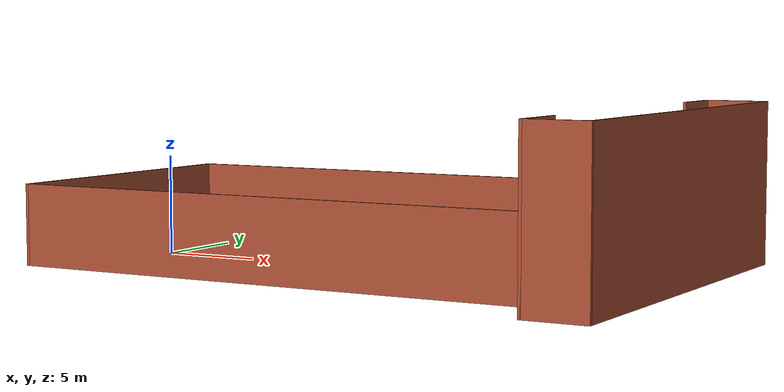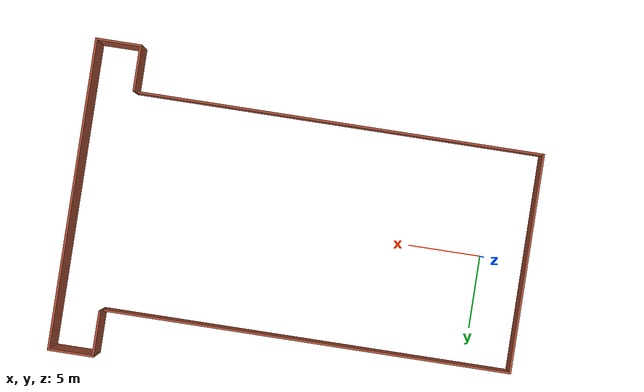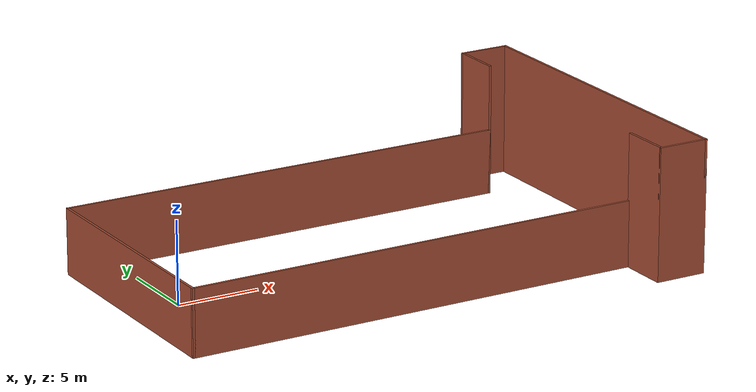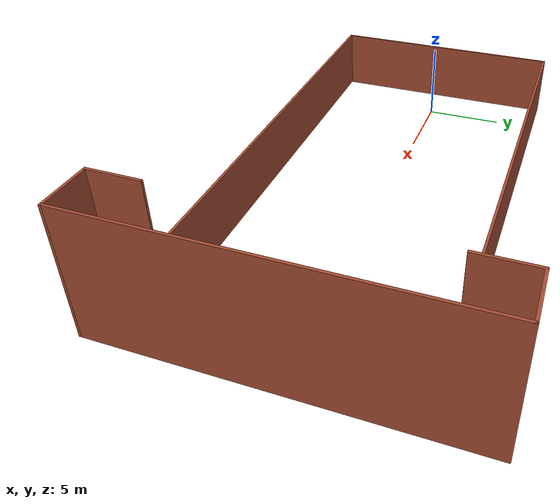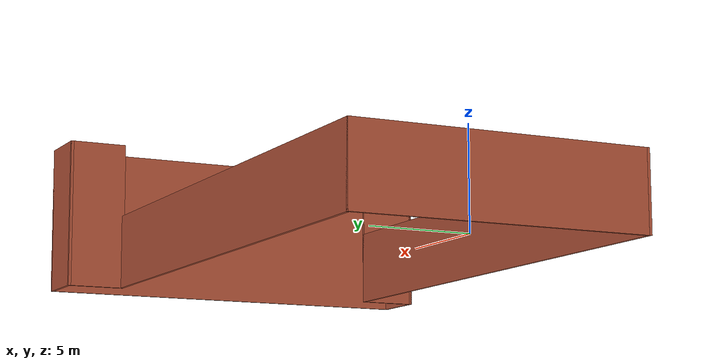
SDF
<?xml version='1.0'?>
<sdf version='1.7'>
  <model name='floorplan3'>
    <pose>12.5 0 0 0 -0 0</pose>
    <link name='Wall_0'>
      <collision name='Wall_0_Collision'>
        <geometry>
          <box>
            <size>15.15 0.15 4</size>
          </box>
        </geometry>
        <pose>0 0 2 0 -0 0</pose>
      </collision>
      <visual name='Wall_0_Visual'>
        <pose>0 0 2 0 -0 0</pose>
        <geometry>
          <box>
            <size>15.15 0.15 4</size>
          </box>
        </geometry>
        <material>
          <script>
            <uri>file://media/materials/scripts/gazebo.material</uri>
            <name>Gazebo/Bricks</name>
          </script>
          <ambient>1 1 1 1</ambient>
        </material>
        <meta>
          <layer>0</layer>
        </meta>
      </visual>
      <pose>-15.5 0 0 0 -0 1.5708</pose>
    </link>
    <link name='Wall_10'>
      <collision name='Wall_10_Collision'>
        <geometry>
          <box>
            <size>3.15 0.15 8</size>
          </box>
        </geometry>
        <pose>0 0 4 0 -0 0</pose>
      </collision>
      <visual name='Wall_10_Visual'>
        <pose>0 0 4 0 -0 0</pose>
        <geometry>
          <box>
            <size>3.15 0.15 8</size>
          </box>
        </geometry>
        <material>
          <script>
            <uri>file://media/materials/scripts/gazebo.material</uri>
            <name>Gazebo/Bricks</name>
          </script>
          <ambient>1 1 1 1</ambient>
        </material>
        <meta>
          <layer>0</layer>
        </meta>
      </visual>
      <pose>14 10.5 0 0 -0 0</pose>
    </link>
    <link name='Wall_11'>
      <collision name='Wall_11_Collision'>
        <geometry>
          <box>
            <size>21.15 0.15 8</size>
          </box>
        </geometry>
        <pose>0 0 4 0 -0 0</pose>
      </collision>
      <visual name='Wall_11_Visual'>
        <pose>0 0 4 0 -0 0</pose>
        <geometry>
          <box>
            <size>21.15 0.15 8</size>
          </box>
        </geometry>
        <material>
          <script>
            <uri>file://media/materials/scripts/gazebo.material</uri>
            <name>Gazebo/Bricks</name>
          </script>
          <ambient>1 1 1 1</ambient>
        </material>
        <meta>
          <layer>0</layer>
        </meta>
      </visual>
      <pose>15.5 0 0 0 -0 -1.5708</pose>
    </link>
    <link name='Wall_12'>
      <collision name='Wall_12_Collision'>
        <geometry>
          <box>
            <size>3.15 0.15 8</size>
          </box>
        </geometry>
        <pose>0 0 4 0 -0 0</pose>
      </collision>
      <visual name='Wall_12_Visual'>
        <pose>0 0 4 0 -0 0</pose>
        <geometry>
          <box>
            <size>3.15 0.15 8</size>
          </box>
        </geometry>
        <material>
          <script>
            <uri>file://media/materials/scripts/gazebo.material</uri>
            <name>Gazebo/Bricks</name>
          </script>
          <ambient>1 1 1 1</ambient>
        </material>
        <meta>
          <layer>0</layer>
        </meta>
      </visual>
      <pose>14 -10.5 0 0 -0 3.14159</pose>
    </link>
    <link name='Wall_2'>
      <collision name='Wall_2_Collision'>
        <geometry>
          <box>
            <size>28.15 0.15 4</size>
          </box>
        </geometry>
        <pose>0 0 2 0 -0 0</pose>
      </collision>
      <visual name='Wall_2_Visual'>
        <pose>0 0 2 0 -0 0</pose>
        <geometry>
          <box>
            <size>28.15 0.15 4</size>
          </box>
        </geometry>
        <material>
          <script>
            <uri>file://media/materials/scripts/gazebo.material</uri>
            <name>Gazebo/Bricks</name>
          </script>
          <ambient>1 1 1 1</ambient>
        </material>
        <meta>
          <layer>0</layer>
        </meta>
      </visual>
      <pose>-1.5 -7.5 0 0 -0 0</pose>
    </link>
    <link name='Wall_4'>
      <collision name='Wall_4_Collision'>
        <geometry>
          <box>
            <size>28.15 0.15 4</size>
          </box>
        </geometry>
        <pose>0 0 2 0 -0 0</pose>
      </collision>
      <visual name='Wall_4_Visual'>
        <pose>0 0 2 0 -0 0</pose>
        <geometry>
          <box>
            <size>28.15 0.15 4</size>
          </box>
        </geometry>
        <material>
          <script>
            <uri>file://media/materials/scripts/gazebo.material</uri>
            <name>Gazebo/Bricks</name>
          </script>
          <ambient>1 1 1 1</ambient>
        </material>
        <meta>
          <layer>0</layer>
        </meta>
      </visual>
      <pose>-1.5 7.5 0 0 -0 0</pose>
    </link>
    <link name='Wall_6'>
      <collision name='Wall_6_Collision'>
        <geometry>
          <box>
            <size>3.15 0.15 8</size>
          </box>
        </geometry>
        <pose>0 0 4 0 -0 0</pose>
      </collision>
      <visual name='Wall_6_Visual'>
        <pose>0 0 4 0 -0 0</pose>
        <geometry>
          <box>
            <size>3.15 0.15 8</size>
          </box>
        </geometry>
        <material>
          <script>
            <uri>file://media/materials/scripts/gazebo.material</uri>
            <name>Gazebo/Bricks</name>
          </script>
          <ambient>1 1 1 1</ambient>
        </material>
        <meta>
          <layer>0</layer>
        </meta>
      </visual>
      <pose>12.5 9 0 0 -0 -1.5708</pose>
    </link>
    <link name='Wall_8'>
      <collision name='Wall_8_Collision'>
        <geometry>
          <box>
            <size>3.15 0.15 8</size>
          </box>
        </geometry>
        <pose>0 0 4 0 -0 0</pose>
      </collision>
      <visual name='Wall_8_Visual'>
        <pose>0 0 4 0 -0 0</pose>
        <geometry>
          <box>
            <size>3.15 0.15 8</size>
          </box>
        </geometry>
        <material>
          <script>
            <uri>file://media/materials/scripts/gazebo.material</uri>
            <name>Gazebo/Bricks</name>
          </script>
          <ambient>1 1 1 1</ambient>
        </material>
        <meta>
          <layer>0</layer>
        </meta>
      </visual>
      <pose>12.5 -9 0 0 -0 -1.5708</pose>
    </link>
    <static>1</static>
  </model>
</sdf>
